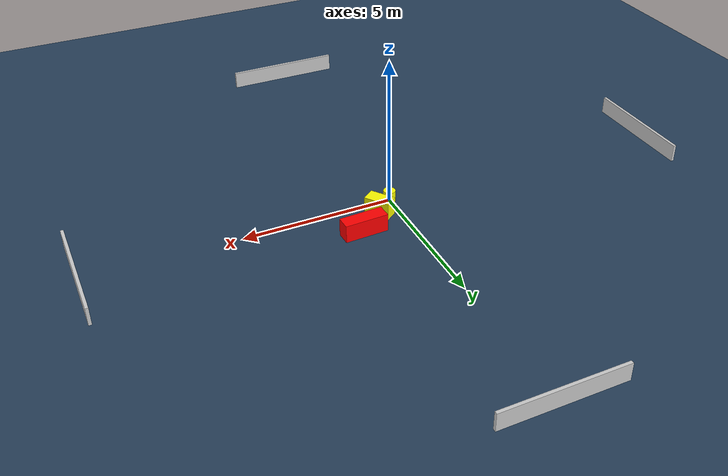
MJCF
<?xml version="1.0" ?>
<mujoco model="generated_environment">
  <option timestep="0.01" integrator="RK4" cone="elliptic"/>
  <default>
    <geom density="1"/>
  </default>
  <asset>
    <texture builtin="gradient" height="3072" name="skybox" rgb1="0.3 0.5 0.7" rgb2="0 0 0" type="skybox" width="512"/>
    <texture builtin="checker" height="300" name="groundplane" rgb1="0.2 0.3 0.4" rgb2="0.1 0.2 0.3" type="2d" width="300"/>
    <material name="groundplane" reflectance="0.2" texrepeat="5 5" texture="groundplane"/>
  </asset>
  <worldbody>
    <light dir="0 0 -1" directional="true" pos="0 0 1.5"/>
    <geom condim="3" friction="0.5 0.005 0.001" material="groundplane" name="floor" pos="0 0 0" size="0 0 0.05" type="plane"/>
    <body name="walls">
      <geom name="wall_1" condim="4" pos="-10.0 0.0 0.3" rgba="0.800000011920929 0.800000011920929 0.800000011920929 1.0" size="0.05 2.0 0.3" type="box"/>
      <geom name="wall_2" condim="4" pos="10.0 0.0 0.3" rgba="0.800000011920929 0.800000011920929 0.800000011920929 1.0" size="0.05 2.0 0.3" type="box"/>
      <geom name="wall_3" condim="4" pos="0.0 -10.0 0.3" rgba="0.800000011920929 0.800000011920929 0.800000011920929 1.0" size="2.0 0.05 0.3" type="box"/>
      <geom name="wall_4" condim="4" pos="0.0 10.0 0.3" rgba="0.800000011920929 0.800000011920929 0.800000011920929 1.0" size="2.0 0.05 0.3" type="box"/>
    </body>
    <body name="robot">
      <joint name="joint_x" type="slide" pos="0 0 0" axis="1 0 0"/>
      <joint name="joint_y" type="slide" pos="0 0 0" axis="0 1 0"/>
      <geom name="robot" type="cylinder" pos="0.0 0.0 0.2" size="0.2 0.2 0.0" mass="5.0" friction="1.0 0.005 0.0001" condim="4" rgba="1.0 1.0 0.0 1.0"/>
    </body>
    <body name="obstacle_1_movable">
      <geom name="obstacle_1_movable" condim="4" pos="0.5962324221401981 0.5195374852667455 0.3" euler="0 0 216.17126947331053" friction="0.0 0.005 0.001" rgba="1.0 1.0 0.0 1.0" size="0.23429606125102848 0.42639307070095195 0.3" type="box" mass="0.1"/>
      <joint type="free"/>
    </body>
    <body name="obstacle_2_static">
      <geom name="obstacle_2_static" condim="4" pos="1.4842317010755057 1.274342287164772 0.3" euler="0 0 182.23367012289944" friction="0.0 0.005 0.001" rgba="1.0 0.0 0.0 1.0" size="0.716590213016497 0.2376267289723657 0.3" type="box"/>
    </body>
  </worldbody>
  <actuator>
    <motor name="actuator_x" joint="joint_x" gear="1" ctrlrange="-1 1"/>
    <motor name="actuator_y" joint="joint_y" gear="1" ctrlrange="-1 1"/>
  </actuator>
</mujoco>
